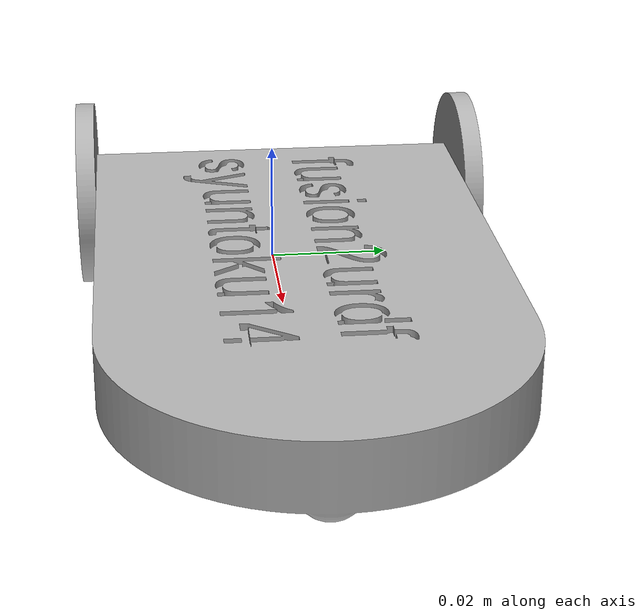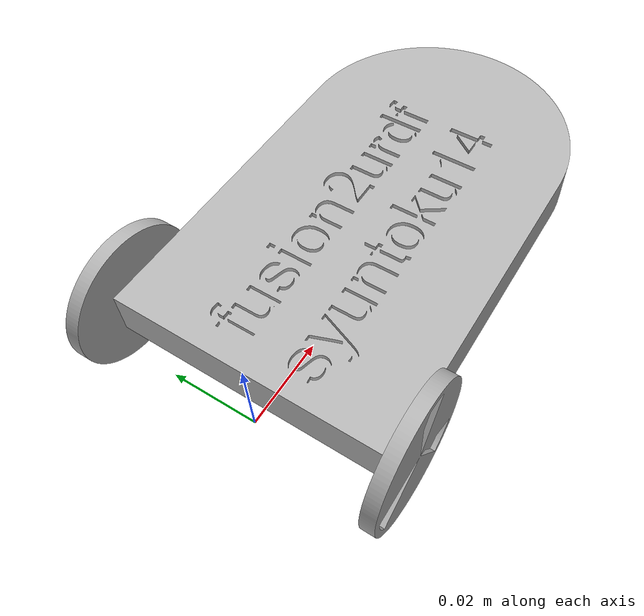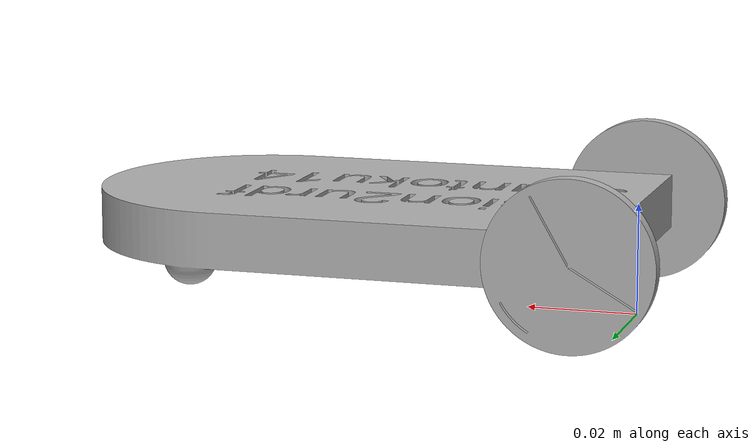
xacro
<?xml version="1.0" ?>
<robot name="basic_robot" xmlns:xacro="http://www.ros.org/wiki/xacro">

<xacro:include filename="$(find basic_robot_description)/urdf/materials.xacro" />
<xacro:include filename="$(find basic_robot_description)/urdf/basic_robot.trans" />
<xacro:include filename="$(find basic_robot_description)/urdf/basic_robot.gazebo" />
<link name="base_link">
  <inertial>
    <origin xyz="0.04751746171403913 5.957834412756805e-06 0.014858800945303922" rpy="0 0 0"/>
    <mass value="0.4424918249889501"/>
    <inertia ixx="0.000128" iyy="0.000341" izz="0.00046" ixy="0.0" iyz="-0.0" ixz="2e-06"/>
  </inertial>
  <visual>
    <origin xyz="0 0 0" rpy="0 0 0"/>
    <geometry>
      <mesh filename="package://basic_robot_description/meshes/base_link.stl" scale="0.001 0.001 0.001"/>
    </geometry>
    <material name="silver"/>
  </visual>
  <collision>
    <origin xyz="0 0 0" rpy="0 0 0"/>
    <geometry>
      <mesh filename="package://basic_robot_description/meshes/base_link.stl" scale="0.001 0.001 0.001"/>
    </geometry>
  </collision>
</link>

<link name="right_wheel_1">
  <inertial>
    <origin xyz="7.450581211015939e-11 -0.0014276134939839383 2.2351742505477556e-10" rpy="0 0 0"/>
    <mass value="0.015522874373267296"/>
    <inertia ixx="1e-06" iyy="2e-06" izz="1e-06" ixy="-0.0" iyz="0.0" ixz="0.0"/>
  </inertial>
  <visual>
    <origin xyz="-0.005 0.03 -0.015" rpy="0 0 0"/>
    <geometry>
      <mesh filename="package://basic_robot_description/meshes/right_wheel_1.stl" scale="0.001 0.001 0.001"/>
    </geometry>
    <material name="silver"/>
  </visual>
  <collision>
    <origin xyz="-0.005 0.03 -0.015" rpy="0 0 0"/>
    <geometry>
      <mesh filename="package://basic_robot_description/meshes/right_wheel_1.stl" scale="0.001 0.001 0.001"/>
    </geometry>
  </collision>
</link>

<link name="left_wheel_1">
  <inertial>
    <origin xyz="7.450581211015939e-11 0.0014276134939839383 2.2351741811588166e-10" rpy="0 0 0"/>
    <mass value="0.015522874373267296"/>
    <inertia ixx="1e-06" iyy="2e-06" izz="1e-06" ixy="0.0" iyz="0.0" ixz="-0.0"/>
  </inertial>
  <visual>
    <origin xyz="-0.005 -0.03 -0.015" rpy="0 0 0"/>
    <geometry>
      <mesh filename="package://basic_robot_description/meshes/left_wheel_1.stl" scale="0.001 0.001 0.001"/>
    </geometry>
    <material name="silver"/>
  </visual>
  <collision>
    <origin xyz="-0.005 -0.03 -0.015" rpy="0 0 0"/>
    <geometry>
      <mesh filename="package://basic_robot_description/meshes/left_wheel_1.stl" scale="0.001 0.001 0.001"/>
    </geometry>
  </collision>
</link>

<joint name="right_joint" type="continuous">
  <origin xyz="0.005 -0.03 0.015" rpy="0 0 0"/>
  <parent link="base_link"/>
  <child link="right_wheel_1"/>
  <axis xyz="0.0 -1.0 0.0"/>
</joint>

<joint name="left_joint" type="continuous">
  <origin xyz="0.005 0.03 0.015" rpy="0 0 0"/>
  <parent link="base_link"/>
  <child link="left_wheel_1"/>
  <axis xyz="0.0 1.0 0.0"/>
</joint>

</robot>

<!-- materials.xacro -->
<robot name="basic_robot" xmlns:xacro="http://www.ros.org/wiki/xacro" >

<material name="silver">
  <color rgba="0.700 0.700 0.700 1.000"/>
</material>

</robot>

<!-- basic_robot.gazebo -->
<robot name="basic_robot" xmlns:xacro="http://www.ros.org/wiki/xacro" >

<xacro:property name="body_color" value="Gazebo/Silver" />

<gazebo>
  <plugin name="control" filename="libgazebo_ros_control.so">
    <robotNamespace>/basic_robot_controller</robotNamespace>
    <robotSimType>gazebo_ros_control/DefaultRobotHWSim</robotSimType>
  </plugin>
</gazebo>
<gazebo reference="base_link">
  <material>${body_color}</material>
  <mu1>0.2</mu1>
  <mu2>0.2</mu2>
  <selfCollide>true</selfCollide>
  <gravity>true</gravity>
</gazebo>

<gazebo reference="right_wheel_1">
  <material>${body_color}</material>
  <mu1>0.2</mu1>
  <mu2>0.2</mu2>
  <selfCollide>true</selfCollide>
</gazebo>

<gazebo reference="left_wheel_1">
  <material>${body_color}</material>
  <mu1>0.2</mu1>
  <mu2>0.2</mu2>
  <selfCollide>true</selfCollide>
</gazebo>

</robot>
